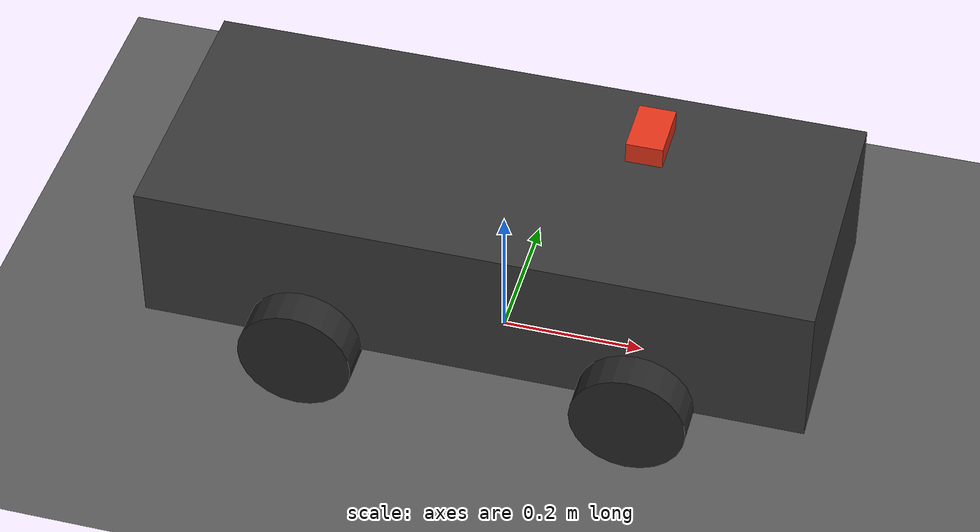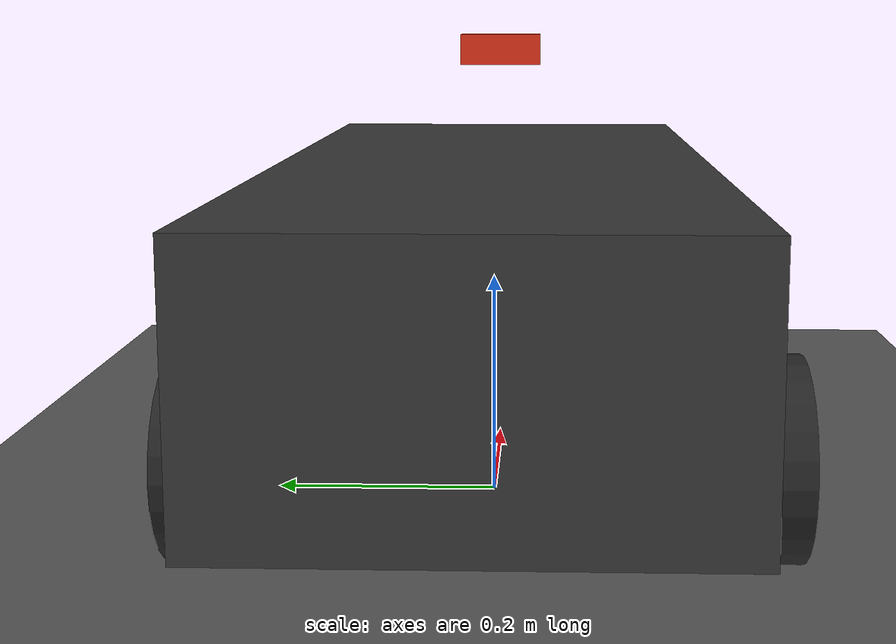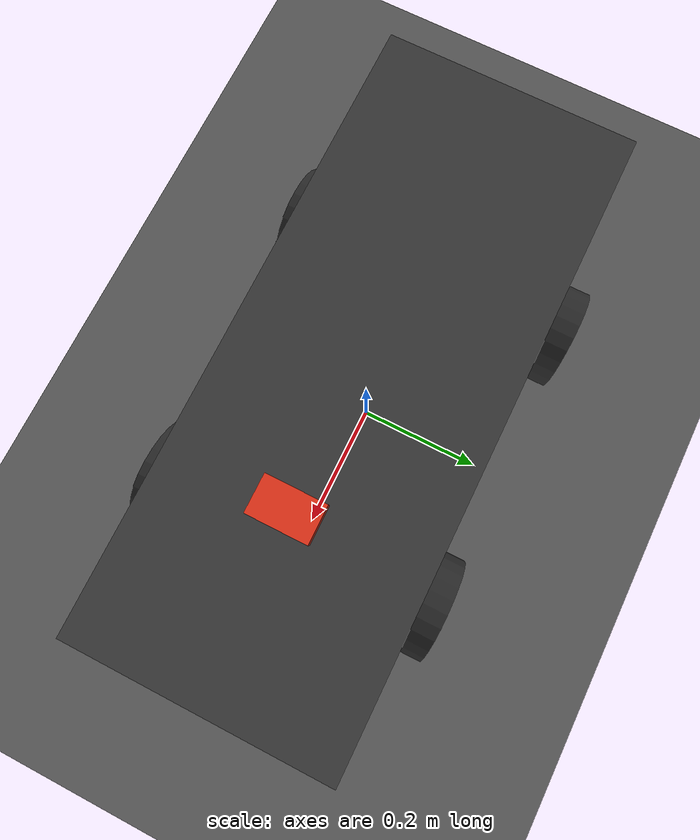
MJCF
<mujoco model="scout_mini">

  <compiler angle="radian" meshdir="meshes/"/>

  <option timestep="0.004" integrator="RK4" gravity="0 0 -9.81"/>

  <default>
    <joint damping="0.5"/>
    <geom friction="1.0 0.005 0.0001" condim="3"/>
  </default>

  <asset>
    <texture name="floor_tex" type="2d" builtin="checker"
             rgb1="0.3 0.3 0.3" rgb2="0.4 0.4 0.4" width="512" height="512"/>
    <material name="floor_mat" texture="floor_tex" texrepeat="8 8"/>
    <material name="chassis_mat" rgba="0.22 0.22 0.22 1"/>
    <material name="wheel_mat"   rgba="0.15 0.15 0.15 1"/>
    <material name="cam_mat"     rgba="0.9 0.2 0.1 1"/>
  </asset>

  <worldbody>

    <!-- Ground -->
    <geom name="floor" type="plane" size="20 20 0.1"
          material="floor_mat" friction="1.0 0.005 0.0001"/>

    <!-- Lighting -->
    <light name="sun" pos="0 0 6" dir="0 0 -1"
           diffuse="0.9 0.9 0.9" specular="0.3 0.3 0.3" castshadow="true"/>

    <!-- ─────────────────────────── ROBOT ─────────────────────────── -->
    <body name="base_link" pos="0 0 0.20">

      <!-- 6-DOF free joint so the body can move in the world -->
      <freejoint name="root"/>

      <!-- Inertia from scout_mini.urdf inertial_link (60 kg) -->
      <inertial pos="0 0 0" mass="60"
                fullinertia="2.288641 5.103976 3.431465 0 0 0"/>

      <!-- Chassis collision box  (half-sizes: 0.4625 × 0.19 × 0.105) -->
      <geom name="chassis" type="box"
            size="0.4625 0.19 0.105"
            material="chassis_mat"/>

      <!-- ── Front-Left Wheel ─────────────────────────────────────── -->
      <!-- joint origin from URDF: xyz="0.2319755 0.2082515 -0.100998" rpy="-1.57 0 0" -->
      <!-- rpy "-1.57 0 0" means the local Z of the URDF joint (spin axis)
           maps to world -Y → in MuJoCo we spin about local Y with axis "0 1 0" -->
      <body name="front_left_wheel" pos="0.2320 0.2083 -0.1010">
        <joint name="front_left_wheel" type="hinge" axis="0 1 0"
               pos="0 0 0" limited="false"/>
        <inertial pos="0 0 0" mass="3"
                  fullinertia="0.7171 0.7171 0.1361 0 0 0"/>
        <!-- Collision cylinder -->
        <geom name="fl_col" type="cylinder" size="0.08 0.0325"
              euler="1.5708 0 0" material="wheel_mat"/>
      </body>

      <!-- ── Rear-Left Wheel ──────────────────────────────────────── -->
      <body name="rear_left_wheel" pos="-0.2320 0.2083 -0.1010">
        <joint name="rear_left_wheel" type="hinge" axis="0 1 0"
               pos="0 0 0" limited="false"/>
        <inertial pos="0 0 0" mass="3"
                  fullinertia="0.7171 0.7171 0.1361 0 0 0"/>
        <geom name="rl_col" type="cylinder" size="0.08 0.0325"
              euler="1.5708 0 0" material="wheel_mat"/>
      </body>

      <!-- ── Front-Right Wheel ────────────────────────────────────── -->
      <!-- URDF rpy="1.57 0 0" → same hinge axis, mirrored side -->
      <body name="front_right_wheel" pos="0.2320 -0.2083 -0.1000">
        <joint name="front_right_wheel" type="hinge" axis="0 1 0"
               pos="0 0 0" limited="false"/>
        <inertial pos="0 0 0" mass="3"
                  fullinertia="0.7171 0.7171 0.1361 0 0 0"/>
        <geom name="fr_col" type="cylinder" size="0.08 0.0325"
              euler="1.5708 0 0" material="wheel_mat"/>
      </body>

      <!-- ── Rear-Right Wheel ─────────────────────────────────────── -->
      <body name="rear_right_wheel" pos="-0.2320 -0.2083 -0.1000">
        <joint name="rear_right_wheel" type="hinge" axis="0 1 0"
               pos="0 0 0" limited="false"/>
        <inertial pos="0 0 0" mass="3"
                  fullinertia="0.7171 0.7171 0.1361 0 0 0"/>
        <geom name="rr_col" type="cylinder" size="0.08 0.0325"
              euler="1.5708 0 0" material="wheel_mat"/>
      </body>

      <!-- ── Front RGB Camera ─────────────────────────────────────── -->
      <!-- Mounted at (0.2, 0, 0.2) from base_link, looking forward (-X in cam frame = +X world) -->
      <body name="camera_link" pos="0.2 0 0.2">
        <!-- Small visual marker so you can see it in the viewer -->
        <geom name="cam_marker" type="box" size="0.025 0.04 0.015"
              material="cam_mat" contype="0" conaffinity="0"/>
        <!-- Camera looks in the +X direction of the robot (MuJoCo cam looks in -Z by default,
             so we rotate it 90° around Y to make it look forward) -->
        <camera name="front_cam" fovy="80" euler="0 1.5708 0"/>
      </body>

    </body><!-- /base_link -->

  </worldbody>

  <actuator>
    <velocity name="act_fl" joint="front_left_wheel"  kv="40"/>
    <velocity name="act_rl" joint="rear_left_wheel"   kv="40"/>
    <velocity name="act_fr" joint="front_right_wheel" kv="40"/>
    <velocity name="act_rr" joint="rear_right_wheel"  kv="40"/>
  </actuator>

</mujoco>
